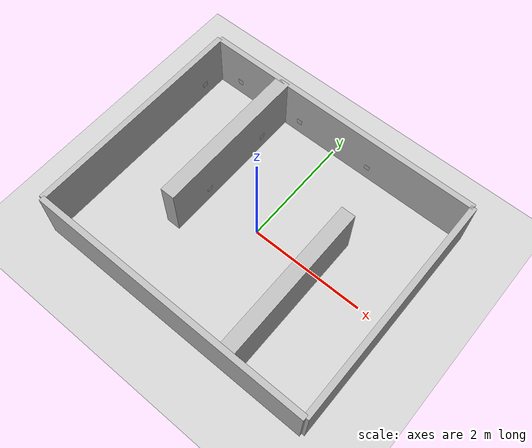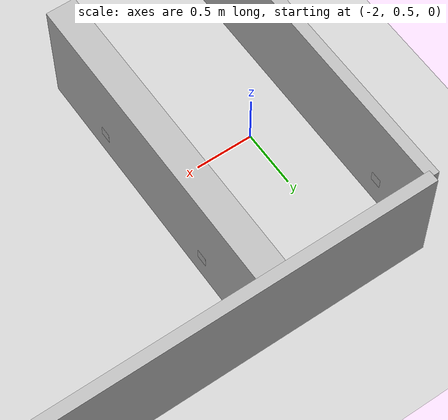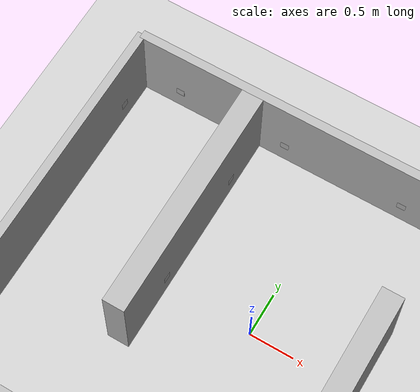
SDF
<sdf version="1.6">
 <world name="bodega_zigzag">
  <include><uri>model://sun</uri></include>
  <include><uri>model://ground_plane</uri></include>
  <model name="perimetro">
   <static>true</static>
   <link name="norte">
    <pose>0 2.0 0.5 0 0 0</pose>
    <collision name="c"><geometry><box><size>5.0 0.1 1.0</size></box></geometry></collision>
    <visual name="v"><geometry><box><size>5.0 0.1 1.0</size></box></geometry></visual>
   </link>
   <link name="sur">
    <pose>0 -2.0 0.5 0 0 0</pose>
    <collision name="c"><geometry><box><size>5.0 0.1 1.0</size></box></geometry></collision>
    <visual name="v"><geometry><box><size>5.0 0.1 1.0</size></box></geometry></visual>
   </link>
   <link name="oeste">
    <pose>-2.5 0 0.5 0 0 0</pose>
    <collision name="c"><geometry><box><size>0.1 4.0 1.0</size></box></geometry></collision>
    <visual name="v"><geometry><box><size>0.1 4.0 1.0</size></box></geometry></visual>
   </link>
   <link name="este">
    <pose>2.5 0 0.5 0 0 0</pose>
    <collision name="c"><geometry><box><size>0.1 4.0 1.0</size></box></geometry></collision>
    <visual name="v"><geometry><box><size>0.1 4.0 1.0</size></box></geometry></visual>
   </link>
  </model>
  <model name="muros_internos">
   <static>true</static>
   <link name="interno_izq">
    <pose>-1.125 0.625 0.5 0 0 0</pose>
    <collision name="c"><geometry><box><size>0.25 2.75 1.0</size></box></geometry></collision>
    <visual name="v"><geometry><box><size>0.25 2.75 1.0</size></box></geometry></visual>
   </link>
   <link name="interno_der">
    <pose>1.125 -0.625 0.5 0 0 0</pose>
    <collision name="c"><geometry><box><size>0.25 2.75 1.0</size></box></geometry></collision>
    <visual name="v"><geometry><box><size>0.25 2.75 1.0</size></box></geometry></visual>
   </link>
  </model>
  <include>
   <name>aruco_marker_0</name>
   <uri>model://aruco_marker_0</uri>
   <pose>-2.0 1.94 0.3 1.5707963267948963 0.0 0.0</pose>
  </include>
  <include>
   <name>aruco_marker_1</name>
   <uri>model://aruco_marker_1</uri>
   <pose>-0.7 1.94 0.3 1.5707963267948963 0.0 0.0</pose>
  </include>
  <include>
   <name>aruco_marker_2</name>
   <uri>model://aruco_marker_2</uri>
   <pose>0.7 1.94 0.3 1.5707963267948963 0.0 0.0</pose>
  </include>
  <include>
   <name>aruco_marker_10</name>
   <uri>model://aruco_marker_10</uri>
   <pose>-2.44 1.5 0.3 1.5707963267948963 0.0 1.5707963267948963</pose>
  </include>
  <include>
   <name>aruco_marker_11</name>
   <uri>model://aruco_marker_11</uri>
   <pose>2.44 -1.5 0.3 1.5707963267948963 0.0 -1.5707963267948963</pose>
  </include>
  <include>
   <name>aruco_marker_12</name>
   <uri>model://aruco_marker_12</uri>
   <pose>2.44 0.0 0.3 1.5707963267948963 0.0 -1.5707963267948963</pose>
  </include>
  <include>
   <name>aruco_marker_13</name>
   <uri>model://aruco_marker_13</uri>
   <pose>2.44 1.5 0.3 1.5707963267948963 0.0 -1.5707963267948963</pose>
  </include>
  <include>
   <name>aruco_marker_14</name>
   <uri>model://aruco_marker_14</uri>
   <pose>-0.99 1.3 0.3 1.5707963267948963 0.0 1.5707963267948963</pose>
  </include>
  <include>
   <name>aruco_marker_15</name>
   <uri>model://aruco_marker_15</uri>
   <pose>-0.99 0.0 0.3 1.5707963267948963 0.0 1.5707963267948963</pose>
  </include>
  <include>
   <name>aruco_marker_16</name>
   <uri>model://aruco_marker_16</uri>
   <pose>-1.26 1.3 0.3 1.5707963267948963 0.0 -1.5707963267948963</pose>
  </include>
 </world>
</sdf>

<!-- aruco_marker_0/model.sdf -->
<sdf version="1.6">
  <model name="aruco_marker_0">
    <static>true</static>
    <link name="link">
      <visual name="visual">
        <cast_shadows>false</cast_shadows>
        <geometry>
          <box><size>0.1 0.1 0.001</size></box>
        </geometry>
        <material>
          <script>
            <uri>model://aruco_marker_0/materials/scripts</uri>
            <uri>model://aruco_marker_0/materials/textures</uri>
            <name>ArucoMarker/Id0</name>
          </script>
        </material>
      </visual>
      <collision name="collision">
        <geometry>
          <box><size>0.1 0.1 0.001</size></box>
        </geometry>
      </collision>
    </link>
  </model>
</sdf>

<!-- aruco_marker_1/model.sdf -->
<sdf version="1.6">
  <model name="aruco_marker_1">
    <static>true</static>
    <link name="link">
      <visual name="visual">
        <cast_shadows>false</cast_shadows>
        <geometry>
          <box><size>0.1 0.1 0.001</size></box>
        </geometry>
        <material>
          <script>
            <uri>model://aruco_marker_1/materials/scripts</uri>
            <uri>model://aruco_marker_1/materials/textures</uri>
            <name>ArucoMarker/Id1</name>
          </script>
        </material>
      </visual>
      <collision name="collision">
        <geometry>
          <box><size>0.1 0.1 0.001</size></box>
        </geometry>
      </collision>
    </link>
  </model>
</sdf>

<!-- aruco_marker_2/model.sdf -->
<sdf version="1.6">
  <model name="aruco_marker_2">
    <static>true</static>
    <link name="link">
      <visual name="visual">
        <cast_shadows>false</cast_shadows>
        <geometry>
          <box><size>0.1 0.1 0.001</size></box>
        </geometry>
        <material>
          <script>
            <uri>model://aruco_marker_2/materials/scripts</uri>
            <uri>model://aruco_marker_2/materials/textures</uri>
            <name>ArucoMarker/Id2</name>
          </script>
        </material>
      </visual>
      <collision name="collision">
        <geometry>
          <box><size>0.1 0.1 0.001</size></box>
        </geometry>
      </collision>
    </link>
  </model>
</sdf>

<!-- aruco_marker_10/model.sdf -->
<sdf version="1.6">
  <model name="aruco_marker_10">
    <static>true</static>
    <link name="link">
      <visual name="visual">
        <cast_shadows>false</cast_shadows>
        <geometry>
          <box><size>0.1 0.1 0.001</size></box>
        </geometry>
        <material>
          <script>
            <uri>model://aruco_marker_10/materials/scripts</uri>
            <uri>model://aruco_marker_10/materials/textures</uri>
            <name>ArucoMarker/Id10</name>
          </script>
        </material>
      </visual>
      <collision name="collision">
        <geometry>
          <box><size>0.1 0.1 0.001</size></box>
        </geometry>
      </collision>
    </link>
  </model>
</sdf>

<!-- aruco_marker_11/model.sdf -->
<sdf version="1.6">
  <model name="aruco_marker_11">
    <static>true</static>
    <link name="link">
      <visual name="visual">
        <cast_shadows>false</cast_shadows>
        <geometry>
          <box><size>0.1 0.1 0.001</size></box>
        </geometry>
        <material>
          <script>
            <uri>model://aruco_marker_11/materials/scripts</uri>
            <uri>model://aruco_marker_11/materials/textures</uri>
            <name>ArucoMarker/Id11</name>
          </script>
        </material>
      </visual>
      <collision name="collision">
        <geometry>
          <box><size>0.1 0.1 0.001</size></box>
        </geometry>
      </collision>
    </link>
  </model>
</sdf>

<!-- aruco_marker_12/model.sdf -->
<sdf version="1.6">
  <model name="aruco_marker_12">
    <static>true</static>
    <link name="link">
      <visual name="visual">
        <cast_shadows>false</cast_shadows>
        <geometry>
          <box><size>0.1 0.1 0.001</size></box>
        </geometry>
        <material>
          <script>
            <uri>model://aruco_marker_12/materials/scripts</uri>
            <uri>model://aruco_marker_12/materials/textures</uri>
            <name>ArucoMarker/Id12</name>
          </script>
        </material>
      </visual>
      <collision name="collision">
        <geometry>
          <box><size>0.1 0.1 0.001</size></box>
        </geometry>
      </collision>
    </link>
  </model>
</sdf>

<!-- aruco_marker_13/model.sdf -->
<sdf version="1.6">
  <model name="aruco_marker_13">
    <static>true</static>
    <link name="link">
      <visual name="visual">
        <cast_shadows>false</cast_shadows>
        <geometry>
          <box><size>0.1 0.1 0.001</size></box>
        </geometry>
        <material>
          <script>
            <uri>model://aruco_marker_13/materials/scripts</uri>
            <uri>model://aruco_marker_13/materials/textures</uri>
            <name>ArucoMarker/Id13</name>
          </script>
        </material>
      </visual>
      <collision name="collision">
        <geometry>
          <box><size>0.1 0.1 0.001</size></box>
        </geometry>
      </collision>
    </link>
  </model>
</sdf>

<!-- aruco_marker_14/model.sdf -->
<sdf version="1.6">
  <model name="aruco_marker_14">
    <static>true</static>
    <link name="link">
      <visual name="visual">
        <cast_shadows>false</cast_shadows>
        <geometry>
          <box><size>0.1 0.1 0.001</size></box>
        </geometry>
        <material>
          <script>
            <uri>model://aruco_marker_14/materials/scripts</uri>
            <uri>model://aruco_marker_14/materials/textures</uri>
            <name>ArucoMarker/Id14</name>
          </script>
        </material>
      </visual>
      <collision name="collision">
        <geometry>
          <box><size>0.1 0.1 0.001</size></box>
        </geometry>
      </collision>
    </link>
  </model>
</sdf>

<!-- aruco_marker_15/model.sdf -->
<sdf version="1.6">
  <model name="aruco_marker_15">
    <static>true</static>
    <link name="link">
      <visual name="visual">
        <cast_shadows>false</cast_shadows>
        <geometry>
          <box><size>0.1 0.1 0.001</size></box>
        </geometry>
        <material>
          <script>
            <uri>model://aruco_marker_15/materials/scripts</uri>
            <uri>model://aruco_marker_15/materials/textures</uri>
            <name>ArucoMarker/Id15</name>
          </script>
        </material>
      </visual>
      <collision name="collision">
        <geometry>
          <box><size>0.1 0.1 0.001</size></box>
        </geometry>
      </collision>
    </link>
  </model>
</sdf>

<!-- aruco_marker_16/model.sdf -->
<sdf version="1.6">
  <model name="aruco_marker_16">
    <static>true</static>
    <link name="link">
      <visual name="visual">
        <cast_shadows>false</cast_shadows>
        <geometry>
          <box><size>0.1 0.1 0.001</size></box>
        </geometry>
        <material>
          <script>
            <uri>model://aruco_marker_16/materials/scripts</uri>
            <uri>model://aruco_marker_16/materials/textures</uri>
            <name>ArucoMarker/Id16</name>
          </script>
        </material>
      </visual>
      <collision name="collision">
        <geometry>
          <box><size>0.1 0.1 0.001</size></box>
        </geometry>
      </collision>
    </link>
  </model>
</sdf>
